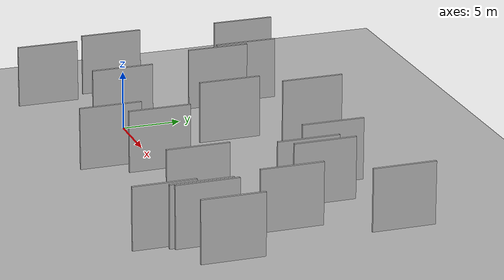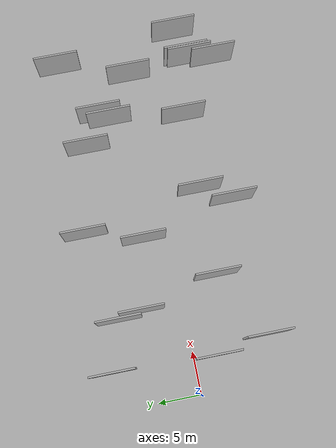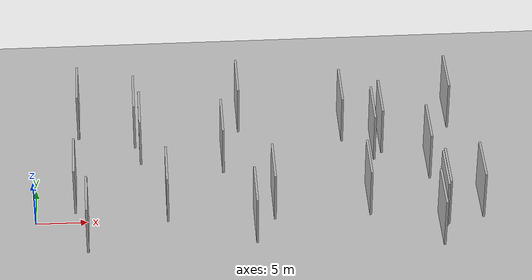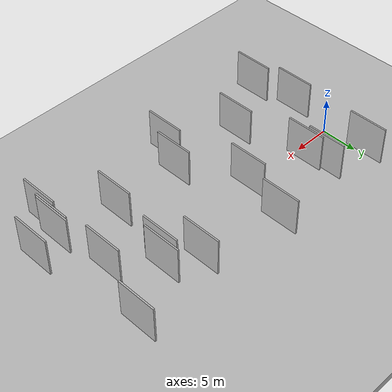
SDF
<?xml version="1.0" encoding="utf-8"?>

<sdf version="1.6">

   <world name="default">

      <gui fullscreen="0">

         <camera name="user_camera">

            <pose>-15 0 4.57585 0 0 0</pose>

            <view_controller>orbit</view_controller>

         </camera>

      </gui>

      <scene>

         <sky>

           <clouds>

             <speed>12</speed>

           </clouds>

         </sky>

         <ambient>0.4 0.4 0.4 1</ambient>

         <background>0.7 0.7 0.7 1</background>

         <shadows>1</shadows>

      </scene>

      <gravity>0 0 -9.8066</gravity>

      <magnetic_field>6e-06 2.3e-05 -4.2e-05</magnetic_field>

      <physics default="0" name="default_physics" type="ode">

         <ode>

            <solver>

               <type>quick</type>

               <iters>10</iters>

               <sor>1.0</sor>

               <use_dynamic_moi_rescaling>0</use_dynamic_moi_rescaling>

            </solver>

            <constraints>

               <cfm>0</cfm>

               <erp>0.2</erp>

               <contact_max_correcting_vel>100</contact_max_correcting_vel>

               <contact_surface_layer>0.001</contact_surface_layer>

            </constraints>

         </ode>

         <max_step_size>0.004</max_step_size>

         <real_time_factor>1</real_time_factor>

         <real_time_update_rate>250</real_time_update_rate>

      </physics>

      <light name="sun" type="directional">

         <cast_shadows>1</cast_shadows>

         <pose>0 0 10 0 0 0</pose>

         <diffuse>0.8 0.8 0.8 1</diffuse>

         <specular>0.2 0.2 0.2 1</specular>

         <attenuation>

            <range>1000</range>

            <constant>0.9</constant>

            <linear>0.01</linear>

            <quadratic>0.001</quadratic>

         </attenuation>

         <direction>-0.5 0.1 -0.9</direction>

      </light>

      <include>

         <name>ground_plane_1</name>

         <uri>model://HANNAS_ground_plane</uri>

         <pose>0 0 0  0 0 0</pose>

      </include>

      <include>

         <name>ground_plane_2</name>

         <uri>model://HANNAS_ground_plane</uri>

         <pose>100 0 0  0 0 0</pose>

      </include>

      <model name="HANNAS_wall_1">

         <static>1</static>

         <pose frame="">33.4687 5.3144 5.0 0.000000 0.000000 1.570796</pose>

         <link name="link">

            <pose frame="">0 0 2.50 0 0 0</pose>

            <collision name="collision">

               <geometry>

                  <box>

                     <size>5.00 0.2 5.00</size>

                  </box>

               </geometry>

               <max_contacts>10</max_contacts>

               <surface>

                  <contact>

                     <ode/>

                  </contact>

                  <bounce/>

                  <friction>

                     <torsional>

                        <ode/>

                     </torsional>

                     <ode/>

                  </friction>

               </surface>

            </collision>

            <visual name="visual">

               <cast_shadows>0</cast_shadows>

               <geometry>

                  <box>

                     <size>5.00 0.2 5.00</size>

                  </box>

               </geometry>

               <material>

                  <script>

                     <uri>model://HANNAS_wall/materials/scripts</uri>

                     <uri>model://HANNAS_wall/materials/textures</uri>

                     <name>vrc/HANNAS_wall</name>

                  </script>

               </material>

            </visual>

            <self_collide>0</self_collide>

            <enable_wind>0</enable_wind>

            <kinematic>0</kinematic>

         </link>

      </model>

      <model name="HANNAS_wall_2">

         <static>1</static>

         <pose frame="">20.7372 -7.5459 5.0 0.000000 0.000000 1.570796</pose>

         <link name="link">

            <pose frame="">0 0 2.50 0 0 0</pose>

            <collision name="collision">

               <geometry>

                  <box>

                     <size>5.00 0.2 5.00</size>

                  </box>

               </geometry>

               <max_contacts>10</max_contacts>

               <surface>

                  <contact>

                     <ode/>

                  </contact>

                  <bounce/>

                  <friction>

                     <torsional>

                        <ode/>

                     </torsional>

                     <ode/>

                  </friction>

               </surface>

            </collision>

            <visual name="visual">

               <cast_shadows>0</cast_shadows>

               <geometry>

                  <box>

                     <size>5.00 0.2 5.00</size>

                  </box>

               </geometry>

               <material>

                  <script>

                     <uri>model://HANNAS_wall/materials/scripts</uri>

                     <uri>model://HANNAS_wall/materials/textures</uri>

                     <name>vrc/HANNAS_wall</name>

                  </script>

               </material>

            </visual>

            <self_collide>0</self_collide>

            <enable_wind>0</enable_wind>

            <kinematic>0</kinematic>

         </link>

      </model>

      <model name="HANNAS_wall_3">

         <static>1</static>

         <pose frame="">4.0278 -2.2597 5.0 0.000000 0.000000 1.570796</pose>

         <link name="link">

            <pose frame="">0 0 2.50 0 0 0</pose>

            <collision name="collision">

               <geometry>

                  <box>

                     <size>5.00 0.2 5.00</size>

                  </box>

               </geometry>

               <max_contacts>10</max_contacts>

               <surface>

                  <contact>

                     <ode/>

                  </contact>

                  <bounce/>

                  <friction>

                     <torsional>

                        <ode/>

                     </torsional>

                     <ode/>

                  </friction>

               </surface>

            </collision>

            <visual name="visual">

               <cast_shadows>0</cast_shadows>

               <geometry>

                  <box>

                     <size>5.00 0.2 5.00</size>

                  </box>

               </geometry>

               <material>

                  <script>

                     <uri>model://HANNAS_wall/materials/scripts</uri>

                     <uri>model://HANNAS_wall/materials/textures</uri>

                     <name>vrc/HANNAS_wall</name>

                  </script>

               </material>

            </visual>

            <self_collide>0</self_collide>

            <enable_wind>0</enable_wind>

            <kinematic>0</kinematic>

         </link>

      </model>

      <model name="HANNAS_wall_4">

         <static>1</static>

         <pose frame="">40.2348 8.9967 5.0 0.000000 0.000000 1.570796</pose>

         <link name="link">

            <pose frame="">0 0 2.50 0 0 0</pose>

            <collision name="collision">

               <geometry>

                  <box>

                     <size>5.00 0.2 5.00</size>

                  </box>

               </geometry>

               <max_contacts>10</max_contacts>

               <surface>

                  <contact>

                     <ode/>

                  </contact>

                  <bounce/>

                  <friction>

                     <torsional>

                        <ode/>

                     </torsional>

                     <ode/>

                  </friction>

               </surface>

            </collision>

            <visual name="visual">

               <cast_shadows>0</cast_shadows>

               <geometry>

                  <box>

                     <size>5.00 0.2 5.00</size>

                  </box>

               </geometry>

               <material>

                  <script>

                     <uri>model://HANNAS_wall/materials/scripts</uri>

                     <uri>model://HANNAS_wall/materials/textures</uri>

                     <name>vrc/HANNAS_wall</name>

                  </script>

               </material>

            </visual>

            <self_collide>0</self_collide>

            <enable_wind>0</enable_wind>

            <kinematic>0</kinematic>

         </link>

      </model>

      <model name="HANNAS_wall_5">

         <static>1</static>

         <pose frame="">37.6660 1.1133 5.0 0.000000 0.000000 1.570796</pose>

         <link name="link">

            <pose frame="">0 0 2.50 0 0 0</pose>

            <collision name="collision">

               <geometry>

                  <box>

                     <size>5.00 0.2 5.00</size>

                  </box>

               </geometry>

               <max_contacts>10</max_contacts>

               <surface>

                  <contact>

                     <ode/>

                  </contact>

                  <bounce/>

                  <friction>

                     <torsional>

                        <ode/>

                     </torsional>

                     <ode/>

                  </friction>

               </surface>

            </collision>

            <visual name="visual">

               <cast_shadows>0</cast_shadows>

               <geometry>

                  <box>

                     <size>5.00 0.2 5.00</size>

                  </box>

               </geometry>

               <material>

                  <script>

                     <uri>model://HANNAS_wall/materials/scripts</uri>

                     <uri>model://HANNAS_wall/materials/textures</uri>

                     <name>vrc/HANNAS_wall</name>

                  </script>

               </material>

            </visual>

            <self_collide>0</self_collide>

            <enable_wind>0</enable_wind>

            <kinematic>0</kinematic>

         </link>

      </model>

      <model name="HANNAS_wall_6">

         <static>1</static>

         <pose frame="">32.6576 4.2951 5.0 0.000000 0.000000 1.570796</pose>

         <link name="link">

            <pose frame="">0 0 2.50 0 0 0</pose>

            <collision name="collision">

               <geometry>

                  <box>

                     <size>5.00 0.2 5.00</size>

                  </box>

               </geometry>

               <max_contacts>10</max_contacts>

               <surface>

                  <contact>

                     <ode/>

                  </contact>

                  <bounce/>

                  <friction>

                     <torsional>

                        <ode/>

                     </torsional>

                     <ode/>

                  </friction>

               </surface>

            </collision>

            <visual name="visual">

               <cast_shadows>0</cast_shadows>

               <geometry>

                  <box>

                     <size>5.00 0.2 5.00</size>

                  </box>

               </geometry>

               <material>

                  <script>

                     <uri>model://HANNAS_wall/materials/scripts</uri>

                     <uri>model://HANNAS_wall/materials/textures</uri>

                     <name>vrc/HANNAS_wall</name>

                  </script>

               </material>

            </visual>

            <self_collide>0</self_collide>

            <enable_wind>0</enable_wind>

            <kinematic>0</kinematic>

         </link>

      </model>

      <model name="HANNAS_wall_7">

         <static>1</static>

         <pose frame="">37.9338 -8.8656 5.0 0.000000 0.000000 1.570796</pose>

         <link name="link">

            <pose frame="">0 0 2.50 0 0 0</pose>

            <collision name="collision">

               <geometry>

                  <box>

                     <size>5.00 0.2 5.00</size>

                  </box>

               </geometry>

               <max_contacts>10</max_contacts>

               <surface>

                  <contact>

                     <ode/>

                  </contact>

                  <bounce/>

                  <friction>

                     <torsional>

                        <ode/>

                     </torsional>

                     <ode/>

                  </friction>

               </surface>

            </collision>

            <visual name="visual">

               <cast_shadows>0</cast_shadows>

               <geometry>

                  <box>

                     <size>5.00 0.2 5.00</size>

                  </box>

               </geometry>

               <material>

                  <script>

                     <uri>model://HANNAS_wall/materials/scripts</uri>

                     <uri>model://HANNAS_wall/materials/textures</uri>

                     <name>vrc/HANNAS_wall</name>

                  </script>

               </material>

            </visual>

            <self_collide>0</self_collide>

            <enable_wind>0</enable_wind>

            <kinematic>0</kinematic>

         </link>

      </model>

      <model name="HANNAS_wall_8">

         <static>1</static>

         <pose frame="">10.2978 4.8408 5.0 0.000000 0.000000 1.570796</pose>

         <link name="link">

            <pose frame="">0 0 2.50 0 0 0</pose>

            <collision name="collision">

               <geometry>

                  <box>

                     <size>5.00 0.2 5.00</size>

                  </box>

               </geometry>

               <max_contacts>10</max_contacts>

               <surface>

                  <contact>

                     <ode/>

                  </contact>

                  <bounce/>

                  <friction>

                     <torsional>

                        <ode/>

                     </torsional>

                     <ode/>

                  </friction>

               </surface>

            </collision>

            <visual name="visual">

               <cast_shadows>0</cast_shadows>

               <geometry>

                  <box>

                     <size>5.00 0.2 5.00</size>

                  </box>

               </geometry>

               <material>

                  <script>

                     <uri>model://HANNAS_wall/materials/scripts</uri>

                     <uri>model://HANNAS_wall/materials/textures</uri>

                     <name>vrc/HANNAS_wall</name>

                  </script>

               </material>

            </visual>

            <self_collide>0</self_collide>

            <enable_wind>0</enable_wind>

            <kinematic>0</kinematic>

         </link>

      </model>

      <model name="HANNAS_wall_9">

         <static>1</static>

         <pose frame="">18.1152 3.1146 5.0 0.000000 0.000000 1.570796</pose>

         <link name="link">

            <pose frame="">0 0 2.50 0 0 0</pose>

            <collision name="collision">

               <geometry>

                  <box>

                     <size>5.00 0.2 5.00</size>

                  </box>

               </geometry>

               <max_contacts>10</max_contacts>

               <surface>

                  <contact>

                     <ode/>

                  </contact>

                  <bounce/>

                  <friction>

                     <torsional>

                        <ode/>

                     </torsional>

                     <ode/>

                  </friction>

               </surface>

            </collision>

            <visual name="visual">

               <cast_shadows>0</cast_shadows>

               <geometry>

                  <box>

                     <size>5.00 0.2 5.00</size>

                  </box>

               </geometry>

               <material>

                  <script>

                     <uri>model://HANNAS_wall/materials/scripts</uri>

                     <uri>model://HANNAS_wall/materials/textures</uri>

                     <name>vrc/HANNAS_wall</name>

                  </script>

               </material>

            </visual>

            <self_collide>0</self_collide>

            <enable_wind>0</enable_wind>

            <kinematic>0</kinematic>

         </link>

      </model>

      <model name="HANNAS_wall_10">

         <static>1</static>

         <pose frame="">38.6808 -5.8154 5.0 0.000000 0.000000 1.570796</pose>

         <link name="link">

            <pose frame="">0 0 2.50 0 0 0</pose>

            <collision name="collision">

               <geometry>

                  <box>

                     <size>5.00 0.2 5.00</size>

                  </box>

               </geometry>

               <max_contacts>10</max_contacts>

               <surface>

                  <contact>

                     <ode/>

                  </contact>

                  <bounce/>

                  <friction>

                     <torsional>

                        <ode/>

                     </torsional>

                     <ode/>

                  </friction>

               </surface>

            </collision>

            <visual name="visual">

               <cast_shadows>0</cast_shadows>

               <geometry>

                  <box>

                     <size>5.00 0.2 5.00</size>

                  </box>

               </geometry>

               <material>

                  <script>

                     <uri>model://HANNAS_wall/materials/scripts</uri>

                     <uri>model://HANNAS_wall/materials/textures</uri>

                     <name>vrc/HANNAS_wall</name>

                  </script>

               </material>

            </visual>

            <self_collide>0</self_collide>

            <enable_wind>0</enable_wind>

            <kinematic>0</kinematic>

         </link>

      </model>

      <model name="HANNAS_wall_11">

         <static>1</static>

         <pose frame="">22.5872 -4.1713 5.0 0.000000 0.000000 1.570796</pose>

         <link name="link">

            <pose frame="">0 0 2.50 0 0 0</pose>

            <collision name="collision">

               <geometry>

                  <box>

                     <size>5.00 0.2 5.00</size>

                  </box>

               </geometry>

               <max_contacts>10</max_contacts>

               <surface>

                  <contact>

                     <ode/>

                  </contact>

                  <bounce/>

                  <friction>

                     <torsional>

                        <ode/>

                     </torsional>

                     <ode/>

                  </friction>

               </surface>

            </collision>

            <visual name="visual">

               <cast_shadows>0</cast_shadows>

               <geometry>

                  <box>

                     <size>5.00 0.2 5.00</size>

                  </box>

               </geometry>

               <material>

                  <script>

                     <uri>model://HANNAS_wall/materials/scripts</uri>

                     <uri>model://HANNAS_wall/materials/textures</uri>

                     <name>vrc/HANNAS_wall</name>

                  </script>

               </material>

            </visual>

            <self_collide>0</self_collide>

            <enable_wind>0</enable_wind>

            <kinematic>0</kinematic>

         </link>

      </model>

      <model name="HANNAS_wall_12">

         <static>1</static>

         <pose frame="">9.7842 7.4423 5.0 0.000000 0.000000 1.570796</pose>

         <link name="link">

            <pose frame="">0 0 2.50 0 0 0</pose>

            <collision name="collision">

               <geometry>

                  <box>

                     <size>5.00 0.2 5.00</size>

                  </box>

               </geometry>

               <max_contacts>10</max_contacts>

               <surface>

                  <contact>

                     <ode/>

                  </contact>

                  <bounce/>

                  <friction>

                     <torsional>

                        <ode/>

                     </torsional>

                     <ode/>

                  </friction>

               </surface>

            </collision>

            <visual name="visual">

               <cast_shadows>0</cast_shadows>

               <geometry>

                  <box>

                     <size>5.00 0.2 5.00</size>

                  </box>

               </geometry>

               <material>

                  <script>

                     <uri>model://HANNAS_wall/materials/scripts</uri>

                     <uri>model://HANNAS_wall/materials/textures</uri>

                     <name>vrc/HANNAS_wall</name>

                  </script>

               </material>

            </visual>

            <self_collide>0</self_collide>

            <enable_wind>0</enable_wind>

            <kinematic>0</kinematic>

         </link>

      </model>

      <model name="HANNAS_wall_13">

         <static>1</static>

         <pose frame="">12.6231 -3.9955 5.0 0.000000 0.000000 1.570796</pose>

         <link name="link">

            <pose frame="">0 0 2.50 0 0 0</pose>

            <collision name="collision">

               <geometry>

                  <box>

                     <size>5.00 0.2 5.00</size>

                  </box>

               </geometry>

               <max_contacts>10</max_contacts>

               <surface>

                  <contact>

                     <ode/>

                  </contact>

                  <bounce/>

                  <friction>

                     <torsional>

                        <ode/>

                     </torsional>

                     <ode/>

                  </friction>

               </surface>

            </collision>

            <visual name="visual">

               <cast_shadows>0</cast_shadows>

               <geometry>

                  <box>

                     <size>5.00 0.2 5.00</size>

                  </box>

               </geometry>

               <material>

                  <script>

                     <uri>model://HANNAS_wall/materials/scripts</uri>

                     <uri>model://HANNAS_wall/materials/textures</uri>

                     <name>vrc/HANNAS_wall</name>

                  </script>

               </material>

            </visual>

            <self_collide>0</self_collide>

            <enable_wind>0</enable_wind>

            <kinematic>0</kinematic>

         </link>

      </model>

      <model name="HANNAS_wall_14">

         <static>1</static>

         <pose frame="">5.1594 -8.0126 5.0 0.000000 0.000000 1.570796</pose>

         <link name="link">

            <pose frame="">0 0 2.50 0 0 0</pose>

            <collision name="collision">

               <geometry>

                  <box>

                     <size>5.00 0.2 5.00</size>

                  </box>

               </geometry>

               <max_contacts>10</max_contacts>

               <surface>

                  <contact>

                     <ode/>

                  </contact>

                  <bounce/>

                  <friction>

                     <torsional>

                        <ode/>

                     </torsional>

                     <ode/>

                  </friction>

               </surface>

            </collision>

            <visual name="visual">

               <cast_shadows>0</cast_shadows>

               <geometry>

                  <box>

                     <size>5.00 0.2 5.00</size>

                  </box>

               </geometry>

               <material>

                  <script>

                     <uri>model://HANNAS_wall/materials/scripts</uri>

                     <uri>model://HANNAS_wall/materials/textures</uri>

                     <name>vrc/HANNAS_wall</name>

                  </script>

               </material>

            </visual>

            <self_collide>0</self_collide>

            <enable_wind>0</enable_wind>

            <kinematic>0</kinematic>

         </link>

      </model>

      <model name="HANNAS_wall_15">

         <static>1</static>

         <pose frame="">19.8660 9.4359 5.0 0.000000 0.000000 1.570796</pose>

         <link name="link">

            <pose frame="">0 0 2.50 0 0 0</pose>

            <collision name="collision">

               <geometry>

                  <box>

                     <size>5.00 0.2 5.00</size>

                  </box>

               </geometry>

               <max_contacts>10</max_contacts>

               <surface>

                  <contact>

                     <ode/>

                  </contact>

                  <bounce/>

                  <friction>

                     <torsional>

                        <ode/>

                     </torsional>

                     <ode/>

                  </friction>

               </surface>

            </collision>

            <visual name="visual">

               <cast_shadows>0</cast_shadows>

               <geometry>

                  <box>

                     <size>5.00 0.2 5.00</size>

                  </box>

               </geometry>

               <material>

                  <script>

                     <uri>model://HANNAS_wall/materials/scripts</uri>

                     <uri>model://HANNAS_wall/materials/textures</uri>

                     <name>vrc/HANNAS_wall</name>

                  </script>

               </material>

            </visual>

            <self_collide>0</self_collide>

            <enable_wind>0</enable_wind>

            <kinematic>0</kinematic>

         </link>

      </model>

      <model name="HANNAS_wall_16">

         <static>1</static>

         <pose frame="">31.5280 -4.0995 5.0 0.000000 0.000000 1.570796</pose>

         <link name="link">

            <pose frame="">0 0 2.50 0 0 0</pose>

            <collision name="collision">

               <geometry>

                  <box>

                     <size>5.00 0.2 5.00</size>

                  </box>

               </geometry>

               <max_contacts>10</max_contacts>

               <surface>

                  <contact>

                     <ode/>

                  </contact>

                  <bounce/>

                  <friction>

                     <torsional>

                        <ode/>

                     </torsional>

                     <ode/>

                  </friction>

               </surface>

            </collision>

            <visual name="visual">

               <cast_shadows>0</cast_shadows>

               <geometry>

                  <box>

                     <size>5.00 0.2 5.00</size>

                  </box>

               </geometry>

               <material>

                  <script>

                     <uri>model://HANNAS_wall/materials/scripts</uri>

                     <uri>model://HANNAS_wall/materials/textures</uri>

                     <name>vrc/HANNAS_wall</name>

                  </script>

               </material>

            </visual>

            <self_collide>0</self_collide>

            <enable_wind>0</enable_wind>

            <kinematic>0</kinematic>

         </link>

      </model>

      <model name="HANNAS_wall_17">

         <static>1</static>

         <pose frame="">38.4587 -6.1877 5.0 0.000000 0.000000 1.570796</pose>

         <link name="link">

            <pose frame="">0 0 2.50 0 0 0</pose>

            <collision name="collision">

               <geometry>

                  <box>

                     <size>5.00 0.2 5.00</size>

                  </box>

               </geometry>

               <max_contacts>10</max_contacts>

               <surface>

                  <contact>

                     <ode/>

                  </contact>

                  <bounce/>

                  <friction>

                     <torsional>

                        <ode/>

                     </torsional>

                     <ode/>

                  </friction>

               </surface>

            </collision>

            <visual name="visual">

               <cast_shadows>0</cast_shadows>

               <geometry>

                  <box>

                     <size>5.00 0.2 5.00</size>

                  </box>

               </geometry>

               <material>

                  <script>

                     <uri>model://HANNAS_wall/materials/scripts</uri>

                     <uri>model://HANNAS_wall/materials/textures</uri>

                     <name>vrc/HANNAS_wall</name>

                  </script>

               </material>

            </visual>

            <self_collide>0</self_collide>

            <enable_wind>0</enable_wind>

            <kinematic>0</kinematic>

         </link>

      </model>

      <model name="HANNAS_wall_18">

         <static>1</static>

         <pose frame="">42.0169 -5.0045 5.0 0.000000 0.000000 1.570796</pose>

         <link name="link">

            <pose frame="">0 0 2.50 0 0 0</pose>

            <collision name="collision">

               <geometry>

                  <box>

                     <size>5.00 0.2 5.00</size>

                  </box>

               </geometry>

               <max_contacts>10</max_contacts>

               <surface>

                  <contact>

                     <ode/>

                  </contact>

                  <bounce/>

                  <friction>

                     <torsional>

                        <ode/>

                     </torsional>

                     <ode/>

                  </friction>

               </surface>

            </collision>

            <visual name="visual">

               <cast_shadows>0</cast_shadows>

               <geometry>

                  <box>

                     <size>5.00 0.2 5.00</size>

                  </box>

               </geometry>

               <material>

                  <script>

                     <uri>model://HANNAS_wall/materials/scripts</uri>

                     <uri>model://HANNAS_wall/materials/textures</uri>

                     <name>vrc/HANNAS_wall</name>

                  </script>

               </material>

            </visual>

            <self_collide>0</self_collide>

            <enable_wind>0</enable_wind>

            <kinematic>0</kinematic>

         </link>

      </model>

      <model name="HANNAS_wall_19">

         <static>1</static>

         <pose frame="">29.7975 7.3622 5.0 0.000000 0.000000 1.570796</pose>

         <link name="link">

            <pose frame="">0 0 2.50 0 0 0</pose>

            <collision name="collision">

               <geometry>

                  <box>

                     <size>5.00 0.2 5.00</size>

                  </box>

               </geometry>

               <max_contacts>10</max_contacts>

               <surface>

                  <contact>

                     <ode/>

                  </contact>

                  <bounce/>

                  <friction>

                     <torsional>

                        <ode/>

                     </torsional>

                     <ode/>

                  </friction>

               </surface>

            </collision>

            <visual name="visual">

               <cast_shadows>0</cast_shadows>

               <geometry>

                  <box>

                     <size>5.00 0.2 5.00</size>

                  </box>

               </geometry>

               <material>

                  <script>

                     <uri>model://HANNAS_wall/materials/scripts</uri>

                     <uri>model://HANNAS_wall/materials/textures</uri>

                     <name>vrc/HANNAS_wall</name>

                  </script>

               </material>

            </visual>

            <self_collide>0</self_collide>

            <enable_wind>0</enable_wind>

            <kinematic>0</kinematic>

         </link>

      </model>

      <model name="HANNAS_wall_20">

         <static>1</static>

         <pose frame="">4.3754 9.1036 5.0 0.000000 0.000000 1.570796</pose>

         <link name="link">

            <pose frame="">0 0 2.50 0 0 0</pose>

            <collision name="collision">

               <geometry>

                  <box>

                     <size>5.00 0.2 5.00</size>

                  </box>

               </geometry>

               <max_contacts>10</max_contacts>

               <surface>

                  <contact>

                     <ode/>

                  </contact>

                  <bounce/>

                  <friction>

                     <torsional>

                        <ode/>

                     </torsional>

                     <ode/>

                  </friction>

               </surface>

            </collision>

            <visual name="visual">

               <cast_shadows>0</cast_shadows>

               <geometry>

                  <box>

                     <size>5.00 0.2 5.00</size>

                  </box>

               </geometry>

               <material>

                  <script>

                     <uri>model://HANNAS_wall/materials/scripts</uri>

                     <uri>model://HANNAS_wall/materials/textures</uri>

                     <name>vrc/HANNAS_wall</name>

                  </script>

               </material>

            </visual>

            <self_collide>0</self_collide>

            <enable_wind>0</enable_wind>

            <kinematic>0</kinematic>

         </link>

      </model>

   </world>

</sdf>

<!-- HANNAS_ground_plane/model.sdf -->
<sdf version="1.4">
<model name="HANNAS_ground_plane">
  <static>true</static>
    <link name="link">
      <collision name="collision">
        <geometry>
          <plane>
            <normal>0 0 1</normal>
            <size>1000 1000</size>
          </plane>
        </geometry>
        <surface>
          <friction>
            <ode>
              <mu>100</mu>
              <mu2>50</mu2>
            </ode>
          </friction>
        </surface>
      </collision>
      <visual name="visual">
        <cast_shadows>false</cast_shadows>
        <geometry>
          <plane>
            <normal>0 0 1</normal>
            <size>1000 1000</size>
          </plane>
        </geometry>
        <material>
          <script>
            <uri>model://HANNAS_ground_plane/materials/scripts/HANNAS_ground_plane.material</uri>
	    <uri>model://HANNAS_ground_plane/materials/textures</uri>
            <name>HANNASGroundPlane/Image</name>
          </script>
        </material>
      </visual>
    </link>
  </model>
</sdf>
